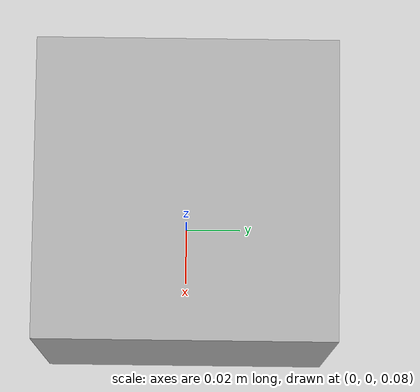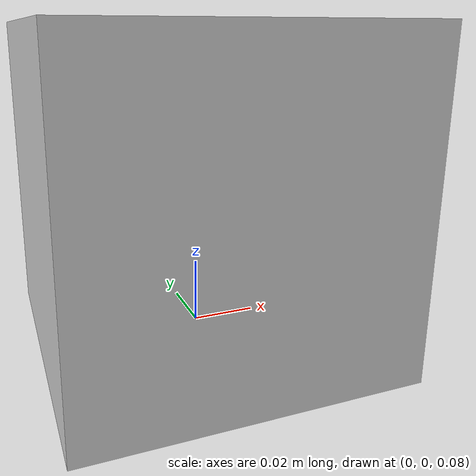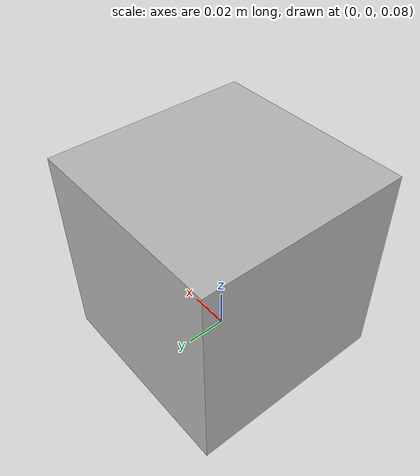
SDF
<sdf version='1.7'>
  <world name='diff_drive_world'>

    <model name='diff_drive'>
      <link name='base_link'>
        <inertial>
          <pose>0 0 0 0 -0 0</pose>
          <mass>10</mass>
          <inertia>
            <ixx>0.0937526</ixx>
            <ixy>0</ixy>
            <ixz>0</ixz>
            <iyy>0.227086</iyy>
            <iyz>0</iyz>
            <izz>0.227085</izz>
          </inertia>
        </inertial>
        <collision name='base_link_fixed_joint_lump__laser_link_collision_2'>
          <pose>0 0 0.125 0 -0 0</pose>
          <geometry>
            <box>
              <size>0.1 0.1 0.1</size>
            </box>
          </geometry>
          <surface>
            <contact>
              <ode/>
            </contact>
            <friction>
              <ode/>
              <torsional>
                <ode/>
              </torsional>
            </friction>
            <bounce/>
          </surface>
          <max_contacts>10</max_contacts>
        </collision>

        <visual name='base_link_fixed_joint_lump__laser_link_visual_2'>
          <pose>0 0 0.125 0 -0 0</pose>
          <geometry>
            <box>
              <size>0.1 0.1 0.1</size>
            </box>
          </geometry>
        </visual>

        <sensor name='head_hokuyo_sensor' type='ray'>
          <visualize>1</visualize>
          <update_rate>20</update_rate>
          <ray>
            <scan>
              <horizontal>
                <samples>720</samples>
                <resolution>1</resolution>
                <min_angle>-1.5708</min_angle>
                <max_angle>1.5708</max_angle>
              </horizontal>
              <vertical>
                <samples>1</samples>
                <min_angle>0</min_angle>
                <max_angle>0</max_angle>
              </vertical>
            </scan>
            <range>
              <min>0.1</min>
              <max>10</max>
              <resolution>0.01</resolution>
            </range>
            <noise>
              <type>gaussian</type>
              <mean>0</mean>
              <stddev>0.01</stddev>
            </noise>
          </ray>
          <plugin name='gazebo_ros_head_hokuyo_controller' filename='libgazebo_ros_laser.so'>
            <topicName>/scan</topicName>
            <frameName>/laser_link</frameName>
            <robotNamespace>/</robotNamespace>
          </plugin>
          <pose>0 0 0.125 0 -0 0</pose>
        </sensor>
      </link>

    </model>

  </world>
</sdf>
